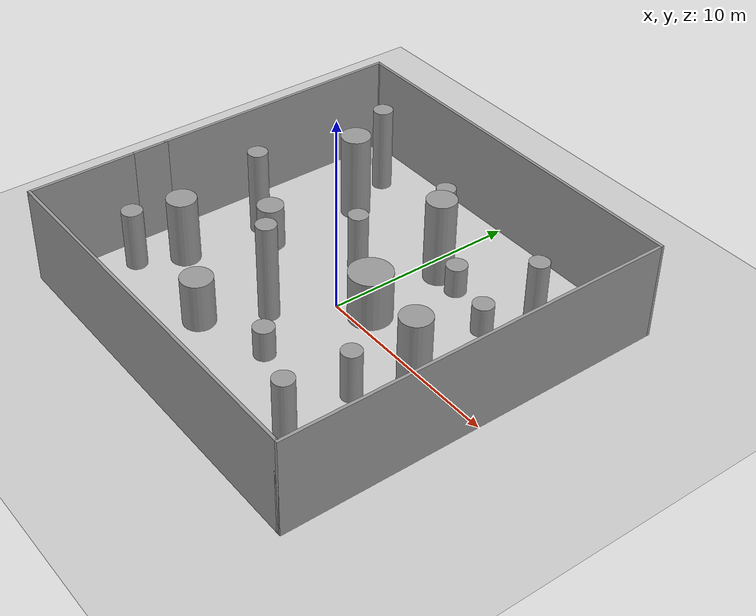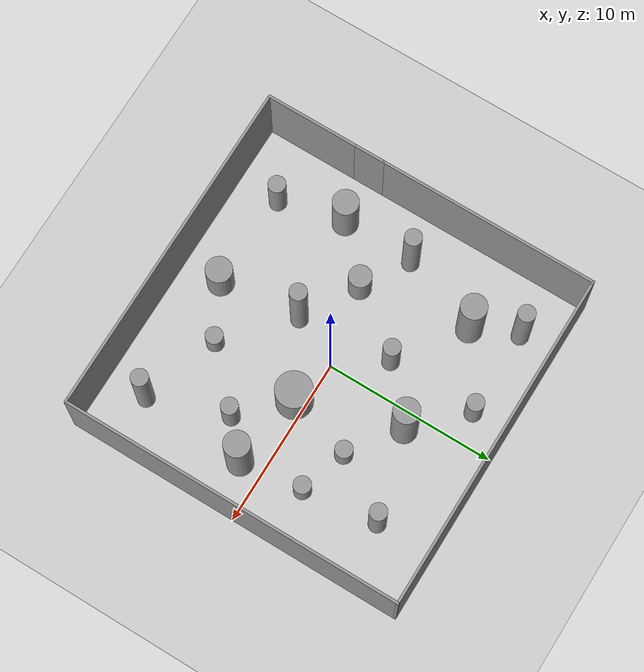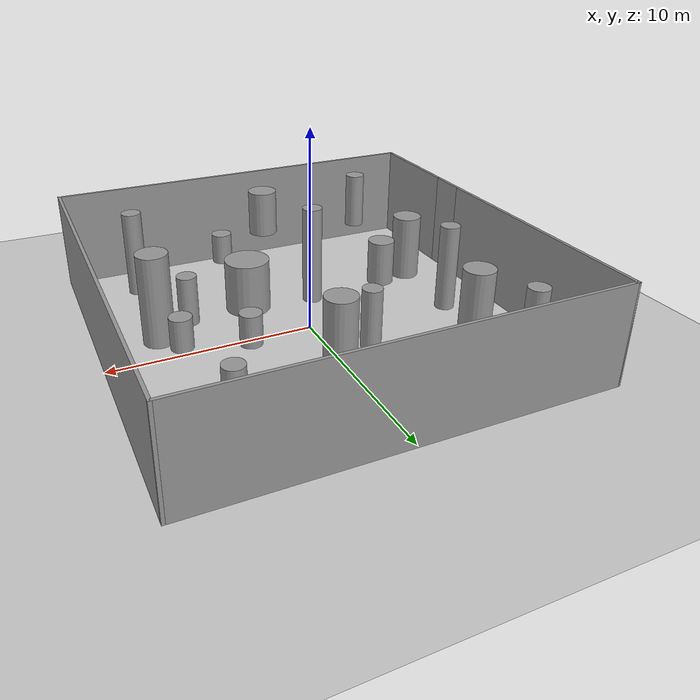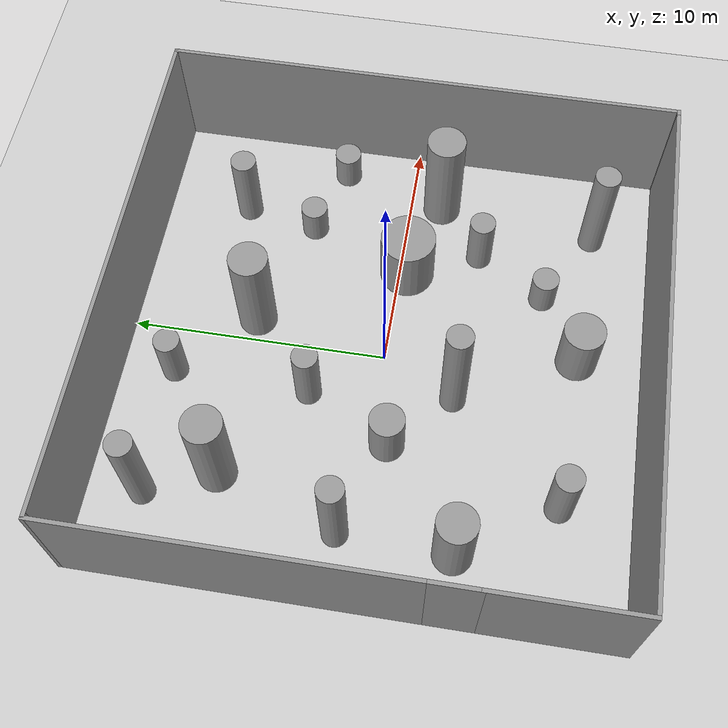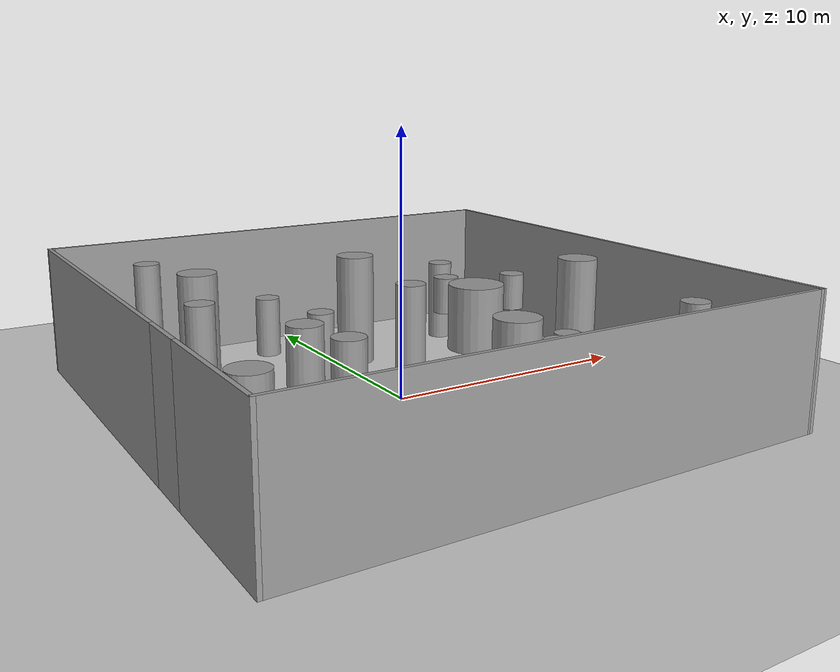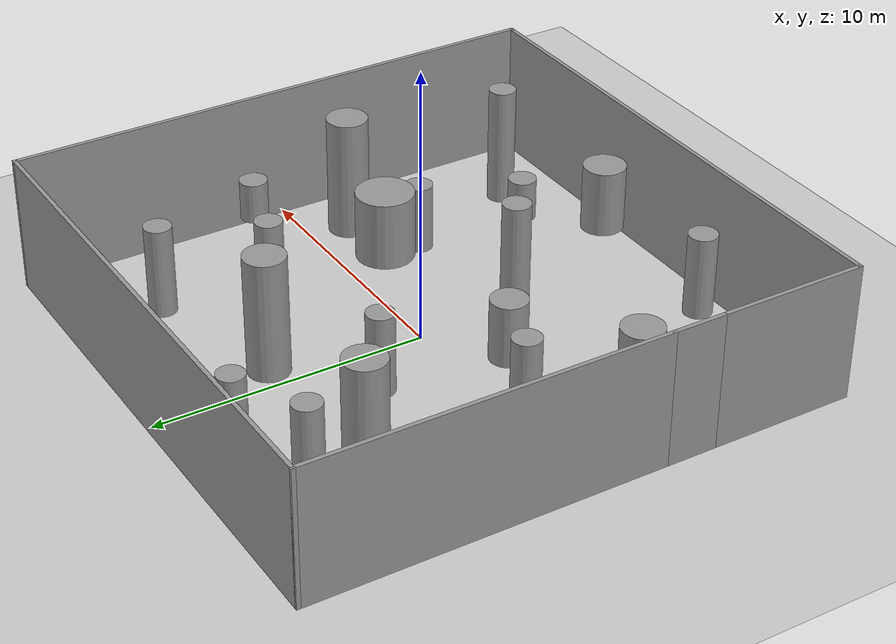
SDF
<sdf version="1.7">
 <world name="default">
  <plugin name="ros_interface_plugin" filename="librotors_gazebo_ros_interface_plugin.so"/>
  <light name="sun" type="directional">
   <pose>0 0 10 0 -0 0</pose>
   <diffuse>0.8 0.8 0.8 1</diffuse>
   <specular>0.2 0.2 0.2 1</specular>
   <attenuation>
    <range>1000</range>
    <constant>0.9</constant>
    <linear>0.01</linear>
    <quadratic>0.001</quadratic>
   </attenuation>
   <direction>-0.5 0.1 -0.9</direction>
   <spot><inner_angle>0</inner_angle><outer_angle>0</outer_angle><falloff>0</falloff></spot>
  </light>
  <model name="ground_plane">
   <static>1</static>
   <link name="link">
    <collision name="collision">
     <geometry><plane><normal>0 0 1</normal><size>100 100</size></plane></geometry>
     <surface><friction><ode><mu>100</mu><mu2>50</mu2></ode></friction></surface>
    </collision>
    <visual name="visual">
     <cast_shadows>0</cast_shadows>
     <geometry><plane><normal>0 0 1</normal><size>100 100</size></plane></geometry>
     <material>
      <script><uri>file://media/materials/scripts/gazebo.material</uri><name>Gazebo/Grey</name></script>
     </material>
    </visual>
   </link>
  </model>
  <gravity>0 0 -9.8</gravity>
  <magnetic_field>6e-06 2.3e-05 -4.2e-05</magnetic_field>
  <atmosphere type="adiabatic"/>
  <physics type="ode">
   <max_step_size>0.001</max_step_size>
   <real_time_factor>1</real_time_factor>
   <real_time_update_rate>1000</real_time_update_rate>
  </physics>
  <scene><ambient>0.4 0.4 0.4 1</ambient><background>0.7 0.7 0.7 1</background><shadows>1</shadows></scene>
  <spherical_coordinates>
   <surface_model>EARTH_WGS84</surface_model>
   <latitude_deg>0</latitude_deg>
   <longitude_deg>0</longitude_deg>
   <elevation>0</elevation>
   <heading_deg>0</heading_deg>
  </spherical_coordinates>
  <model name="unit_cylinder">
   <pose>-1.37996 -2.84591 2.55636 0 -0 0.000539</pose>
   <link name="link">
    <inertial>
     <mass>1</mass>
     <inertia><ixx>0.145833</ixx><ixy>0</ixy><ixz>0</ixz><iyy>0.145833</iyy><iyz>0</iyz><izz>0.125</izz></inertia>
    </inertial>
    <collision name="collision">
     <geometry><cylinder><radius>0.5</radius><length>5.11273</length></cylinder></geometry>
    </collision>
    <visual name="visual">
     <geometry><cylinder><radius>0.5</radius><length>5.11273</length></cylinder></geometry>
     <material>
      <script><name>Gazebo/Grey</name><uri>file://media/materials/scripts/gazebo.material</uri></script>
     </material>
    </visual>
   </link>
  </model>
  <model name="Untitled">
   <pose>-0.0303 0.04304 0 0 -0 0</pose>
   <link name="Wall_15">
    <collision name="Wall_15_Collision">
     <geometry><box><size>2 0.15 5</size></box></geometry>
     <pose>0 0 2.5 0 -0 0</pose>
    </collision>
    <visual name="Wall_15_Visual">
     <pose>0 0 2.5 0 -0 0</pose>
     <geometry><box><size>2 0.15 5</size></box></geometry>
     <material>
      <script><uri>file://media/materials/scripts/gazebo.material</uri><name>Gazebo/Grey</name></script>
      <ambient>1 1 1 1</ambient>
     </material>
     <meta><layer>0</layer></meta>
    </visual>
    <pose>-9.975 -3.775 0 0 -0 -1.5708</pose>
   </link>
   <link name="Wall_17">
    <collision name="Wall_17_Collision">
     <geometry><box><size>5.5 0.15 5</size></box></geometry>
     <pose>0 0 2.5 0 -0 0</pose>
    </collision>
    <visual name="Wall_17_Visual">
     <pose>0 0 2.5 0 -0 0</pose>
     <geometry><box><size>5.5 0.15 5</size></box></geometry>
     <material>
      <script><uri>file://media/materials/scripts/gazebo.material</uri><name>Gazebo/Grey</name></script>
      <ambient>1 1 1 1</ambient>
     </material>
     <meta><layer>0</layer></meta>
    </visual>
    <pose>-9.975 -7.375 0 0 -0 -1.5708</pose>
   </link>
   <link name="Wall_18">
    <collision name="Wall_18_Collision">
     <geometry><box><size>20 0.15 5</size></box></geometry>
     <pose>0 0 2.5 0 -0 0</pose>
    </collision>
    <visual name="Wall_18_Visual">
     <pose>0 0 2.5 0 -0 0</pose>
     <geometry><box><size>20 0.15 5</size></box></geometry>
     <material>
      <script><uri>file://media/materials/scripts/gazebo.material</uri><name>Gazebo/Grey</name></script>
      <ambient>1 1 1 1</ambient>
     </material>
     <meta><layer>0</layer></meta>
    </visual>
    <pose>-0.05 -10.05 0 0 -0 0</pose>
   </link>
   <link name="Wall_28">
    <collision name="Wall_28_Collision">
     <geometry><box><size>0.25 0.15 5</size></box></geometry>
     <pose>0 0 2.5 0 -0 0</pose>
    </collision>
    <visual name="Wall_28_Visual">
     <pose>0 0 2.5 0 -0 0</pose>
     <geometry><box><size>0.25 0.15 5</size></box></geometry>
     <material>
      <script><uri>file://media/materials/scripts/gazebo.material</uri><name>Gazebo/Grey</name></script>
      <ambient>1 1 1 1</ambient>
     </material>
     <meta><layer>0</layer></meta>
    </visual>
    <pose>9.925 -10.05 0 0 -0 0</pose>
   </link>
   <link name="Wall_29">
    <collision name="Wall_29_Collision">
     <geometry><box><size>20.25 0.15 5</size></box></geometry>
     <pose>0 0 2.5 0 -0 0</pose>
    </collision>
    <visual name="Wall_29_Visual">
     <pose>0 0 2.5 0 -0 0</pose>
     <geometry><box><size>20.25 0.15 5</size></box></geometry>
     <material>
      <script><uri>file://media/materials/scripts/gazebo.material</uri><name>Gazebo/Grey</name></script>
      <ambient>1 1 1 1</ambient>
     </material>
     <meta><layer>0</layer></meta>
    </visual>
    <pose>9.975 -0 0 0 -0 1.5708</pose>
   </link>
   <link name="Wall_33">
    <collision name="Wall_33_Collision">
     <geometry><box><size>20 0.15 5</size></box></geometry>
     <pose>0 0 2.5 0 -0 0</pose>
    </collision>
    <visual name="Wall_33_Visual">
     <pose>0 0 2.5 0 -0 0</pose>
     <geometry><box><size>20 0.15 5</size></box></geometry>
     <material>
      <script><uri>file://media/materials/scripts/gazebo.material</uri><name>Gazebo/Grey</name></script>
      <ambient>1 1 1 1</ambient>
     </material>
     <meta><layer>0</layer></meta>
    </visual>
    <pose>0.05 10.05 0 0 -0 3.14159</pose>
   </link>
   <link name="Wall_34">
    <collision name="Wall_34_Collision">
     <geometry><box><size>0.25 0.15 5</size></box></geometry>
     <pose>0 0 2.5 0 -0 0</pose>
    </collision>
    <visual name="Wall_34_Visual">
     <pose>0 0 2.5 0 -0 0</pose>
     <geometry><box><size>0.25 0.15 5</size></box></geometry>
     <material>
      <script><uri>file://media/materials/scripts/gazebo.material</uri><name>Gazebo/Grey</name></script>
      <ambient>1 1 1 1</ambient>
     </material>
     <meta><layer>0</layer></meta>
    </visual>
    <pose>-9.925 10.05 0 0 -0 3.14159</pose>
   </link>
   <link name="Wall_35">
    <collision name="Wall_35_Collision">
     <geometry><box><size>13.05 0.15 5</size></box></geometry>
     <pose>0 0 2.5 0 -0 0</pose>
    </collision>
    <visual name="Wall_35_Visual">
     <pose>0 0 2.5 0 -0 0</pose>
     <geometry><box><size>13.05 0.15 5</size></box></geometry>
     <material>
      <script><uri>file://media/materials/scripts/gazebo.material</uri><name>Gazebo/Grey</name></script>
      <ambient>1 1 1 1</ambient>
     </material>
     <meta><layer>0</layer></meta>
    </visual>
    <pose>-9.975 3.6 0 0 -0 -1.5708</pose>
   </link>
   <static>1</static>
  </model>
  <model name="unit_cylinder_clone_1">
   <pose>-1.92183 2.66658 1.49385 0 -0 0.000352</pose>
   <link name="link">
    <inertial>
     <mass>1</mass>
     <inertia><ixx>0.145833</ixx><ixy>0</ixy><ixz>0</ixz><iyy>0.145833</iyy><iyz>0</iyz><izz>0.125</izz></inertia>
    </inertial>
    <collision name="collision">
     <geometry><cylinder><radius>0.5</radius><length>3.02882</length></cylinder></geometry>
    </collision>
    <visual name="visual">
     <geometry><cylinder><radius>0.5</radius><length>3.02882</length></cylinder></geometry>
     <material>
      <script><name>Gazebo/Grey</name><uri>file://media/materials/scripts/gazebo.material</uri></script>
     </material>
    </visual>
   </link>
   <static>1</static>
  </model>
  <model name="unit_cylinder_clone_2">
   <pose>5.24507 -3.07982 1.21524 0 -0 0.000352</pose>
   <static>1</static>
   <link name="link">
    <inertial>
     <mass>1</mass>
     <inertia><ixx>0.145833</ixx><ixy>0</ixy><ixz>0</ixz><iyy>0.145833</iyy><iyz>0</iyz><izz>0.125</izz></inertia>
    </inertial>
    <collision name="collision">
     <geometry><cylinder><radius>0.5</radius><length>2.62089</length></cylinder></geometry>
    </collision>
    <visual name="visual">
     <geometry><cylinder><radius>0.5</radius><length>2.62089</length></cylinder></geometry>
     <material>
      <script><name>Gazebo/Grey</name><uri>file://media/materials/scripts/gazebo.material</uri></script>
     </material>
    </visual>
   </link>
  </model>
  <model name="unit_cylinder_clone_4">
   <pose>3.02569 -0.399537 2.86769 0 -0 0.000352</pose>
   <static>1</static>
   <link name="link">
    <inertial>
     <mass>1</mass>
     <inertia><ixx>0.145833</ixx><ixy>0</ixy><ixz>0</ixz><iyy>0.145833</iyy><iyz>0</iyz><izz>0.125</izz></inertia>
    </inertial>
    <collision name="collision">
     <geometry><cylinder><radius>1.03463</radius><length>2.46158</length></cylinder></geometry>
    </collision>
    <visual name="visual">
     <geometry><cylinder><radius>1.03463</radius><length>2.46158</length></cylinder></geometry>
     <material>
      <script><name>Gazebo/Grey</name><uri>file://media/materials/scripts/gazebo.material</uri></script>
     </material>
    </visual>
   </link>
  </model>
  <model name="unit_cylinder_clone_5">
   <pose>6.7762 -7.57083 2.22152 0 -0 0.000352</pose>
   <static>1</static>
   <link name="link">
    <inertial>
     <mass>1</mass>
     <inertia><ixx>0.145833</ixx><ixy>0</ixy><ixz>0</ixz><iyy>0.145833</iyy><iyz>0</iyz><izz>0.125</izz></inertia>
    </inertial>
    <collision name="collision">
     <geometry><cylinder><radius>0.5</radius><length>4.5</length></cylinder></geometry>
    </collision>
    <visual name="visual">
     <geometry><cylinder><radius>0.5</radius><length>4.5</length></cylinder></geometry>
     <material>
      <script><name>Gazebo/Grey</name><uri>file://media/materials/scripts/gazebo.material</uri></script>
     </material>
    </visual>
   </link>
  </model>
  <model name="unit_cylinder_clone_6">
   <pose>6.13905 6.68782 1.62333 0 -0 0.000352</pose>
   <static>1</static>
   <link name="link">
    <inertial>
     <mass>1</mass>
     <inertia><ixx>0.145833</ixx><ixy>0</ixy><ixz>0</ixz><iyy>0.145833</iyy><iyz>0</iyz><izz>0.125</izz></inertia>
    </inertial>
    <collision name="collision">
     <geometry><cylinder><radius>0.5</radius><length>3.4263</length></cylinder></geometry>
    </collision>
    <visual name="visual">
     <geometry><cylinder><radius>0.5</radius><length>3.4263</length></cylinder></geometry>
     <material>
      <script><name>Gazebo/Grey</name><uri>file://media/materials/scripts/gazebo.material</uri></script>
     </material>
    </visual>
   </link>
  </model>
  <model name="unit_cylinder_clone_7">
   <pose>-1.77862 7.95805 1.21363 0 -0 0.000352</pose>
   <static>1</static>
   <link name="link">
    <inertial>
     <mass>1</mass>
     <inertia><ixx>0.145833</ixx><ixy>0</ixy><ixz>0</ixz><iyy>0.145833</iyy><iyz>0</iyz><izz>0.125</izz></inertia>
    </inertial>
    <collision name="collision">
     <geometry><cylinder><radius>0.5</radius><length>2.45036</length></cylinder></geometry>
    </collision>
    <visual name="visual">
     <geometry><cylinder><radius>0.5</radius><length>2.45036</length></cylinder></geometry>
     <material>
      <script><name>Gazebo/Grey</name><uri>file://media/materials/scripts/gazebo.material</uri></script>
     </material>
    </visual>
   </link>
  </model>
  <model name="unit_cylinder_clone_8">
   <pose>-7.33746 0.672283 2.21405 0 -0 0.000352</pose>
   <static>1</static>
   <link name="link">
    <inertial>
     <mass>1</mass>
     <inertia><ixx>0.145833</ixx><ixy>0</ixy><ixz>0</ixz><iyy>0.145833</iyy><iyz>0</iyz><izz>0.125</izz></inertia>
    </inertial>
    <collision name="collision">
     <geometry><cylinder><radius>0.5</radius><length>4.5</length></cylinder></geometry>
    </collision>
    <visual name="visual">
     <geometry><cylinder><radius>0.5</radius><length>4.5</length></cylinder></geometry>
     <material>
      <script><name>Gazebo/Grey</name><uri>file://media/materials/scripts/gazebo.material</uri></script>
     </material>
    </visual>
   </link>
  </model>
  <model name="unit_cylinder_clone_10">
   <pose>-5.9302 -6.99962 3.52977 0 -0 0.000352</pose>
   <static>1</static>
   <link name="link">
    <inertial>
     <mass>1</mass>
     <inertia><ixx>0.145833</ixx><ixy>0</ixy><ixz>0</ixz><iyy>0.145833</iyy><iyz>0</iyz><izz>0.125</izz></inertia>
    </inertial>
    <collision name="collision">
     <geometry><cylinder><radius>0.5</radius><length>2.95442</length></cylinder></geometry>
    </collision>
    <visual name="visual">
     <geometry><cylinder><radius>0.5</radius><length>2.95442</length></cylinder></geometry>
     <material>
      <script><name>Gazebo/Grey</name><uri>file://media/materials/scripts/gazebo.material</uri></script>
     </material>
    </visual>
   </link>
  </model>
  <model name="unit_cylinder_clone_12">
   <pose>2.55541 -5.69249 2.55636 0 -0 0.000352</pose>
   <static>1</static>
   <link name="link">
    <inertial>
     <mass>1</mass>
     <inertia><ixx>0.145833</ixx><ixy>0</ixy><ixz>0</ixz><iyy>0.145833</iyy><iyz>0</iyz><izz>0.125</izz></inertia>
    </inertial>
    <collision name="collision">
     <geometry><cylinder><radius>0.5</radius><length>1.52444</length></cylinder></geometry>
    </collision>
    <visual name="visual">
     <geometry><cylinder><radius>0.5</radius><length>1.52444</length></cylinder></geometry>
     <material>
      <script><name>Gazebo/Grey</name><uri>file://media/materials/scripts/gazebo.material</uri></script>
     </material>
    </visual>
   </link>
  </model>
  <model name="unit_cylinder_clone_13">
   <pose>4.26825 3.43985 2.76106 0 -0 0.000352</pose>
   <static>1</static>
   <link name="link">
    <inertial>
     <mass>1</mass>
     <inertia><ixx>0.145833</ixx><ixy>0</ixy><ixz>0</ixz><iyy>0.145833</iyy><iyz>0</iyz><izz>0.125</izz></inertia>
    </inertial>
    <collision name="collision">
     <geometry><cylinder><radius>0.5</radius><length>1.4752</length></cylinder></geometry>
    </collision>
    <visual name="visual">
     <geometry><cylinder><radius>0.5</radius><length>1.4752</length></cylinder></geometry>
     <material>
      <script><name>Gazebo/Grey</name><uri>file://media/materials/scripts/gazebo.material</uri></script>
     </material>
    </visual>
   </link>
  </model>
  <model name="unit_cylinder_clone_4_clone">
   <pose>7.18777 -1.27649 2.55636 0 -0 0.000352</pose>
   <static>1</static>
   <link name="link">
    <inertial>
     <mass>1</mass>
     <inertia><ixx>0.145833</ixx><ixy>0</ixy><ixz>0</ixz><iyy>0.145833</iyy><iyz>0</iyz><izz>0.125</izz></inertia>
    </inertial>
    <collision name="collision">
     <geometry><cylinder><radius>0.75</radius><length>4.5</length></cylinder></geometry>
    </collision>
    <visual name="visual">
     <geometry><cylinder><radius>0.75</radius><length>4.5</length></cylinder></geometry>
     <material>
      <script><name>Gazebo/Grey</name><uri>file://media/materials/scripts/gazebo.material</uri></script>
     </material>
    </visual>
   </link>
  </model>
  <model name="unit_cylinder_clone_4_clone_0">
   <pose>-0.312208 -7.11958 3.61924 0 -0 0.000352</pose>
   <static>1</static>
   <link name="link">
    <inertial>
     <mass>1</mass>
     <inertia><ixx>0.145833</ixx><ixy>0</ixy><ixz>0</ixz><iyy>0.145833</iyy><iyz>0</iyz><izz>0.125</izz></inertia>
    </inertial>
    <collision name="collision">
     <geometry><cylinder><radius>0.75</radius><length>2.37678</length></cylinder></geometry>
    </collision>
    <visual name="visual">
     <geometry><cylinder><radius>0.75</radius><length>2.37678</length></cylinder></geometry>
     <material>
      <script><name>Gazebo/Grey</name><uri>file://media/materials/scripts/gazebo.material</uri></script>
     </material>
    </visual>
   </link>
  </model>
  <model name="unit_cylinder_clone_4_clone_1">
   <pose>-4.2282 -0.732599 2.55636 0 -0 0.000352</pose>
   <static>1</static>
   <link name="link">
    <inertial>
     <mass>1</mass>
     <inertia><ixx>0.145833</ixx><ixy>0</ixy><ixz>0</ixz><iyy>0.145833</iyy><iyz>0</iyz><izz>0.125</izz></inertia>
    </inertial>
    <collision name="collision">
     <geometry><cylinder><radius>0.647442</radius><length>2.2229</length></cylinder></geometry>
    </collision>
    <visual name="visual">
     <geometry><cylinder><radius>0.647442</radius><length>2.2229</length></cylinder></geometry>
     <material>
      <script><name>Gazebo/Grey</name><uri>file://media/materials/scripts/gazebo.material</uri></script>
     </material>
    </visual>
   </link>
  </model>
  <model name="unit_cylinder_clone_4_clone_2">
   <pose>-7.4536 -3.61728 1.70021 0 -0 0.000352</pose>
   <static>1</static>
   <link name="link">
    <inertial>
     <mass>1</mass>
     <inertia><ixx>0.145833</ixx><ixy>0</ixy><ixz>0</ixz><iyy>0.145833</iyy><iyz>0</iyz><izz>0.125</izz></inertia>
    </inertial>
    <collision name="collision">
     <geometry><cylinder><radius>0.75</radius><length>3.502</length></cylinder></geometry>
    </collision>
    <visual name="visual">
     <geometry><cylinder><radius>0.75</radius><length>3.502</length></cylinder></geometry>
     <material>
      <script><name>Gazebo/Grey</name><uri>file://media/materials/scripts/gazebo.material</uri></script>
     </material>
    </visual>
   </link>
  </model>
  <model name="unit_cylinder_clone_4_clone_3">
   <pose>0.984908 5.2617 2.18617 0 -0 0.000352</pose>
   <static>1</static>
   <link name="link">
    <inertial>
     <mass>1</mass>
     <inertia><ixx>0.145833</ixx><ixy>0</ixy><ixz>0</ixz><iyy>0.145833</iyy><iyz>0</iyz><izz>0.125</izz></inertia>
    </inertial>
    <collision name="collision">
     <geometry><cylinder><radius>0.75</radius><length>4.5</length></cylinder></geometry>
    </collision>
    <visual name="visual">
     <geometry><cylinder><radius>0.75</radius><length>4.5</length></cylinder></geometry>
     <material>
      <script><name>Gazebo/Grey</name><uri>file://media/materials/scripts/gazebo.material</uri></script>
     </material>
    </visual>
   </link>
  </model>
  <model name="unit_cylinder_clone_4_clone_3_clone">
   <pose>-5.72053 5.38185 2.1836 0 -0 0.000352</pose>
   <static>1</static>
   <link name="link">
    <inertial>
     <mass>1</mass>
     <inertia><ixx>0.145833</ixx><ixy>0</ixy><ixz>0</ixz><iyy>0.145833</iyy><iyz>0</iyz><izz>0.125</izz></inertia>
    </inertial>
    <collision name="collision">
     <geometry><cylinder><radius>0.75</radius><length>4.5</length></cylinder></geometry>
    </collision>
    <visual name="visual">
     <geometry><cylinder><radius>0.75</radius><length>4.5</length></cylinder></geometry>
     <material>
      <script><name>Gazebo/Grey</name><uri>file://media/materials/scripts/gazebo.material</uri></script>
     </material>
    </visual>
   </link>
  </model>
  <model name="unit_cylinder_clone_7_clone">
   <pose>-6.85441 7.94607 2.20105 0 -0 0.000352</pose>
   <static>1</static>
   <link name="link">
    <inertial>
     <mass>1</mass>
     <inertia><ixx>0.145833</ixx><ixy>0</ixy><ixz>0</ixz><iyy>0.145833</iyy><iyz>0</iyz><izz>0.125</izz></inertia>
    </inertial>
    <collision name="collision">
     <geometry><cylinder><radius>0.5</radius><length>4.5</length></cylinder></geometry>
    </collision>
    <visual name="visual">
     <geometry><cylinder><radius>0.5</radius><length>4.5</length></cylinder></geometry>
     <material>
      <script><name>Gazebo/Grey</name><uri>file://media/materials/scripts/gazebo.material</uri></script>
     </material>
    </visual>
   </link>
  </model>
  <model name="unit_cylinder_clone_13_clone">
   <pose>7.02642 2.58608 2.76106 0 -0 0.000352</pose>
   <static>1</static>
   <link name="link">
    <inertial>
     <mass>1</mass>
     <inertia><ixx>0.145833</ixx><ixy>0</ixy><ixz>0</ixz><iyy>0.145833</iyy><iyz>0</iyz><izz>0.125</izz></inertia>
    </inertial>
    <collision name="collision">
     <geometry><cylinder><radius>0.5</radius><length>1.4752</length></cylinder></geometry>
    </collision>
    <visual name="visual">
     <geometry><cylinder><radius>0.5</radius><length>1.4752</length></cylinder></geometry>
     <material>
      <script><name>Gazebo/Grey</name><uri>file://media/materials/scripts/gazebo.material</uri></script>
     </material>
    </visual>
   </link>
  </model>
 </world>
</sdf>
